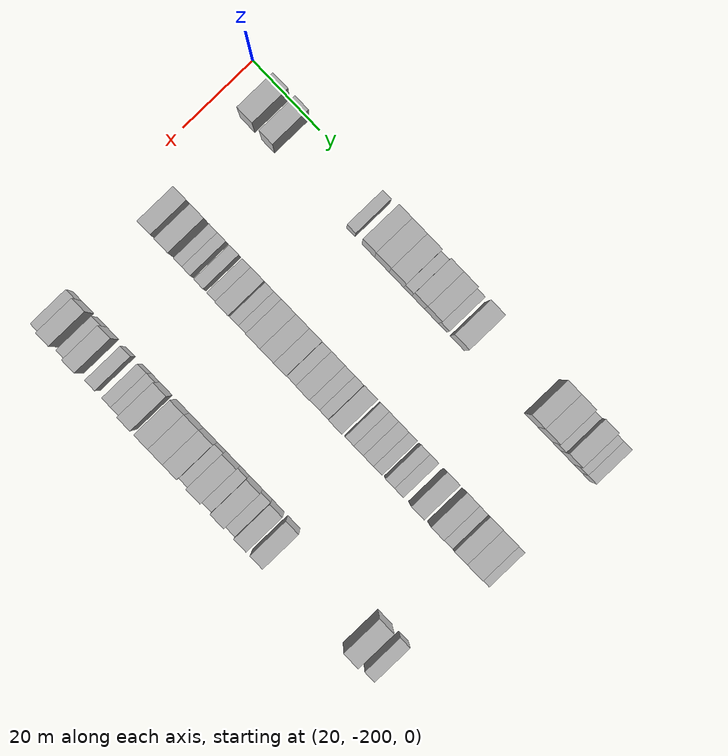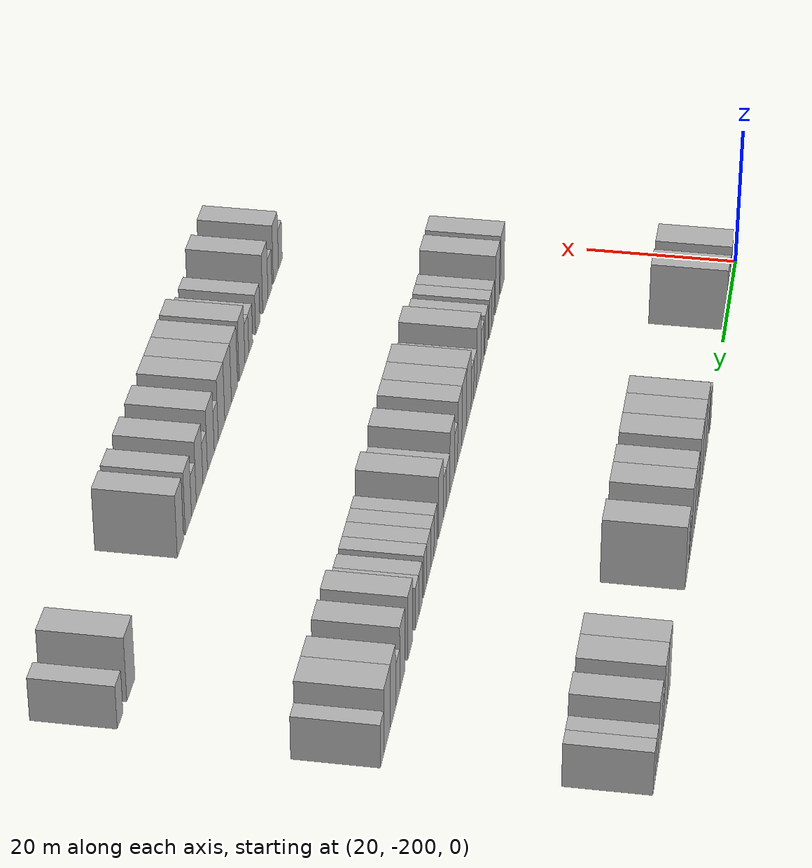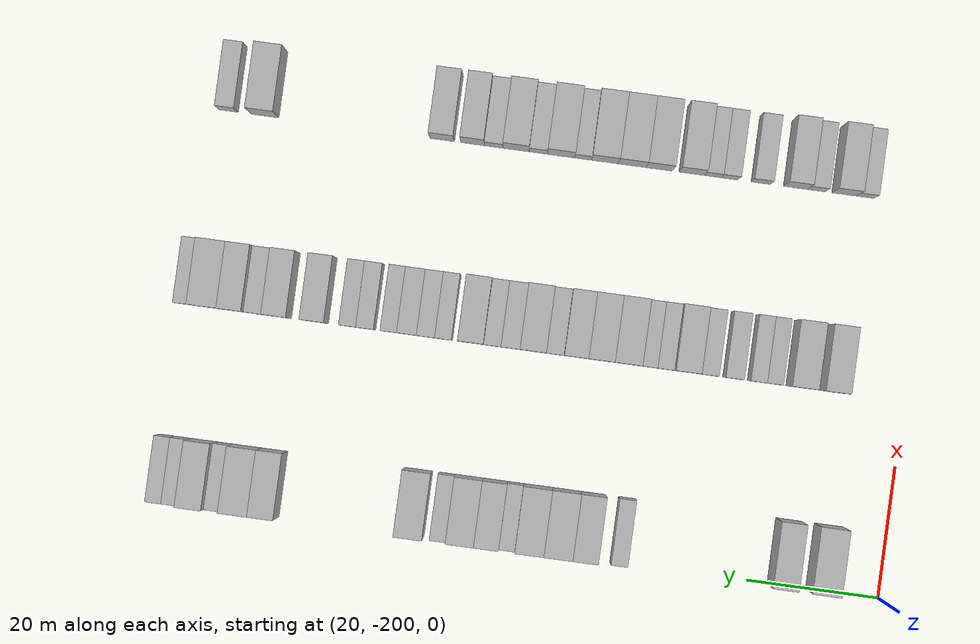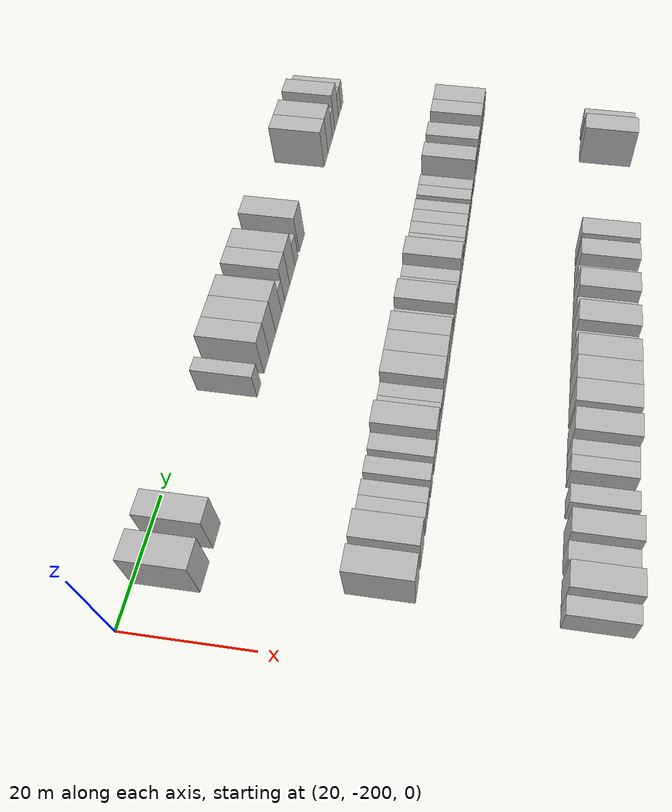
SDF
<sdf version="1.6">
 <world name="default">
  <model name="building_23">
   <static>1</static>
   <pose>25.0000 -191.1368 0 0.000000 0.000000 0.000000</pose>
   <link name="link">
    <pose>0 0 4.50 0 0 0</pose>
    <collision name="collision"><geometry><box><size>10.0000 4.4186 9.0000</size></box></geometry></collision>
    <visual name="visual">
     <cast_shadows>0</cast_shadows>
     <geometry><box><size>10.0000 4.4186 9.0000</size></box></geometry>
     <material>
      <script>
       <uri>model://HANNAS_wall/materials/scripts</uri>
       <uri>model://HANNAS_wall/materials/textures</uri>
       <name>vrc/HANNAS_wall</name>
      </script>
     </material>
    </visual>
   </link>
  </model>
  <model name="building_24">
   <static>1</static>
   <pose>25.0000 -184.9893 0 0.000000 0.000000 0.000000</pose>
   <link name="link">
    <pose>0 0 4.50 0 0 0</pose>
    <collision name="collision"><geometry><box><size>10.0000 3.8763 9.0000</size></box></geometry></collision>
    <visual name="visual">
     <cast_shadows>0</cast_shadows>
     <geometry><box><size>10.0000 3.8763 9.0000</size></box></geometry>
     <material>
      <script>
       <uri>model://HANNAS_wall/materials/scripts</uri>
       <uri>model://HANNAS_wall/materials/textures</uri>
       <name>vrc/HANNAS_wall</name>
      </script>
     </material>
    </visual>
   </link>
  </model>
  <model name="building_25">
   <static>1</static>
   <pose>25.0000 -160.2648 0 0.000000 0.000000 0.000000</pose>
   <link name="link">
    <pose>0 0 3.00 0 0 0</pose>
    <collision name="collision"><geometry><box><size>10.0000 2.5242 6.0000</size></box></geometry></collision>
    <visual name="visual">
     <cast_shadows>0</cast_shadows>
     <geometry><box><size>10.0000 2.5242 6.0000</size></box></geometry>
     <material>
      <script>
       <uri>model://HANNAS_wall/materials/scripts</uri>
       <uri>model://HANNAS_wall/materials/textures</uri>
       <name>vrc/HANNAS_wall</name>
      </script>
     </material>
    </visual>
   </link>
  </model>
  <model name="building_26">
   <static>1</static>
   <pose>25.0000 -155.0980 0 0.000000 0.000000 0.000000</pose>
   <link name="link">
    <pose>0 0 4.50 0 0 0</pose>
    <collision name="collision"><geometry><box><size>10.0000 3.8093 9.0000</size></box></geometry></collision>
    <visual name="visual">
     <cast_shadows>0</cast_shadows>
     <geometry><box><size>10.0000 3.8093 9.0000</size></box></geometry>
     <material>
      <script>
       <uri>model://HANNAS_wall/materials/scripts</uri>
       <uri>model://HANNAS_wall/materials/textures</uri>
       <name>vrc/HANNAS_wall</name>
      </script>
     </material>
    </visual>
   </link>
  </model>
  <model name="building_27">
   <static>1</static>
   <pose>25.0000 -151.0270 0 0.000000 0.000000 0.000000</pose>
   <link name="link">
    <pose>0 0 4.50 0 0 0</pose>
    <collision name="collision"><geometry><box><size>10.0000 4.3329 9.0000</size></box></geometry></collision>
    <visual name="visual">
     <cast_shadows>0</cast_shadows>
     <geometry><box><size>10.0000 4.3329 9.0000</size></box></geometry>
     <material>
      <script>
       <uri>model://HANNAS_wall/materials/scripts</uri>
       <uri>model://HANNAS_wall/materials/textures</uri>
       <name>vrc/HANNAS_wall</name>
      </script>
     </material>
    </visual>
   </link>
  </model>
  <model name="building_28">
   <static>1</static>
   <pose>25.0000 -146.6813 0 0.000000 0.000000 0.000000</pose>
   <link name="link">
    <pose>0 0 4.50 0 0 0</pose>
    <collision name="collision"><geometry><box><size>10.0000 4.3583 9.0000</size></box></geometry></collision>
    <visual name="visual">
     <cast_shadows>0</cast_shadows>
     <geometry><box><size>10.0000 4.3583 9.0000</size></box></geometry>
     <material>
      <script>
       <uri>model://HANNAS_wall/materials/scripts</uri>
       <uri>model://HANNAS_wall/materials/textures</uri>
       <name>vrc/HANNAS_wall</name>
      </script>
     </material>
    </visual>
   </link>
  </model>
  <model name="building_29">
   <static>1</static>
   <pose>25.0000 -143.2896 0 0.000000 0.000000 0.000000</pose>
   <link name="link">
    <pose>0 0 3.00 0 0 0</pose>
    <collision name="collision"><geometry><box><size>10.0000 2.4252 6.0000</size></box></geometry></collision>
    <visual name="visual">
     <cast_shadows>0</cast_shadows>
     <geometry><box><size>10.0000 2.4252 6.0000</size></box></geometry>
     <material>
      <script>
       <uri>model://HANNAS_wall/materials/scripts</uri>
       <uri>model://HANNAS_wall/materials/textures</uri>
       <name>vrc/HANNAS_wall</name>
      </script>
     </material>
    </visual>
   </link>
  </model>
  <model name="building_30">
   <static>1</static>
   <pose>25.0000 -140.2094 0 0.000000 0.000000 0.000000</pose>
   <link name="link">
    <pose>0 0 4.50 0 0 0</pose>
    <collision name="collision"><geometry><box><size>10.0000 3.7352 9.0000</size></box></geometry></collision>
    <visual name="visual">
     <cast_shadows>0</cast_shadows>
     <geometry><box><size>10.0000 3.7352 9.0000</size></box></geometry>
     <material>
      <script>
       <uri>model://HANNAS_wall/materials/scripts</uri>
       <uri>model://HANNAS_wall/materials/textures</uri>
       <name>vrc/HANNAS_wall</name>
      </script>
     </material>
    </visual>
   </link>
  </model>
  <model name="building_31">
   <static>1</static>
   <pose>25.0000 -136.2320 0 0.000000 0.000000 0.000000</pose>
   <link name="link">
    <pose>0 0 4.50 0 0 0</pose>
    <collision name="collision"><geometry><box><size>10.0000 4.2196 9.0000</size></box></geometry></collision>
    <visual name="visual">
     <cast_shadows>0</cast_shadows>
     <geometry><box><size>10.0000 4.2196 9.0000</size></box></geometry>
     <material>
      <script>
       <uri>model://HANNAS_wall/materials/scripts</uri>
       <uri>model://HANNAS_wall/materials/textures</uri>
       <name>vrc/HANNAS_wall</name>
      </script>
     </material>
    </visual>
   </link>
  </model>
  <model name="building_32">
   <static>1</static>
   <pose>25.0000 -132.8708 0 0.000000 0.000000 0.000000</pose>
   <link name="link">
    <pose>0 0 3.00 0 0 0</pose>
    <collision name="collision"><geometry><box><size>10.0000 2.5028 6.0000</size></box></geometry></collision>
    <visual name="visual">
     <cast_shadows>0</cast_shadows>
     <geometry><box><size>10.0000 2.5028 6.0000</size></box></geometry>
     <material>
      <script>
       <uri>model://HANNAS_wall/materials/scripts</uri>
       <uri>model://HANNAS_wall/materials/textures</uri>
       <name>vrc/HANNAS_wall</name>
      </script>
     </material>
    </visual>
   </link>
  </model>
  <model name="building_33">
   <static>1</static>
   <pose>25.0000 -128.4761 0 0.000000 0.000000 0.000000</pose>
   <link name="link">
    <pose>0 0 4.50 0 0 0</pose>
    <collision name="collision"><geometry><box><size>10.0000 4.2866 9.0000</size></box></geometry></collision>
    <visual name="visual">
     <cast_shadows>0</cast_shadows>
     <geometry><box><size>10.0000 4.2866 9.0000</size></box></geometry>
     <material>
      <script>
       <uri>model://HANNAS_wall/materials/scripts</uri>
       <uri>model://HANNAS_wall/materials/textures</uri>
       <name>vrc/HANNAS_wall</name>
      </script>
     </material>
    </visual>
   </link>
  </model>
  <model name="building_34">
   <static>1</static>
   <pose>25.0000 -106.4700 0 0.000000 0.000000 0.000000</pose>
   <link name="link">
    <pose>0 0 4.50 0 0 0</pose>
    <collision name="collision"><geometry><box><size>10.0000 3.9086 9.0000</size></box></geometry></collision>
    <visual name="visual">
     <cast_shadows>0</cast_shadows>
     <geometry><box><size>10.0000 3.9086 9.0000</size></box></geometry>
     <material>
      <script>
       <uri>model://HANNAS_wall/materials/scripts</uri>
       <uri>model://HANNAS_wall/materials/textures</uri>
       <name>vrc/HANNAS_wall</name>
      </script>
     </material>
    </visual>
   </link>
  </model>
  <model name="building_35">
   <static>1</static>
   <pose>25.0000 -102.3288 0 0.000000 0.000000 0.000000</pose>
   <link name="link">
    <pose>0 0 4.50 0 0 0</pose>
    <collision name="collision"><geometry><box><size>10.0000 4.3737 9.0000</size></box></geometry></collision>
    <visual name="visual">
     <cast_shadows>0</cast_shadows>
     <geometry><box><size>10.0000 4.3737 9.0000</size></box></geometry>
     <material>
      <script>
       <uri>model://HANNAS_wall/materials/scripts</uri>
       <uri>model://HANNAS_wall/materials/textures</uri>
       <name>vrc/HANNAS_wall</name>
      </script>
     </material>
    </visual>
   </link>
  </model>
  <model name="building_36">
   <static>1</static>
   <pose>25.0000 -98.9074 0 0.000000 0.000000 0.000000</pose>
   <link name="link">
    <pose>0 0 3.00 0 0 0</pose>
    <collision name="collision"><geometry><box><size>10.0000 2.4693 6.0000</size></box></geometry></collision>
    <visual name="visual">
     <cast_shadows>0</cast_shadows>
     <geometry><box><size>10.0000 2.4693 6.0000</size></box></geometry>
     <material>
      <script>
       <uri>model://HANNAS_wall/materials/scripts</uri>
       <uri>model://HANNAS_wall/materials/textures</uri>
       <name>vrc/HANNAS_wall</name>
      </script>
     </material>
    </visual>
   </link>
  </model>
  <model name="building_37">
   <static>1</static>
   <pose>25.0000 -95.6918 0 0.000000 0.000000 0.000000</pose>
   <link name="link">
    <pose>0 0 4.50 0 0 0</pose>
    <collision name="collision"><geometry><box><size>10.0000 3.9618 9.0000</size></box></geometry></collision>
    <visual name="visual">
     <cast_shadows>0</cast_shadows>
     <geometry><box><size>10.0000 3.9618 9.0000</size></box></geometry>
     <material>
      <script>
       <uri>model://HANNAS_wall/materials/scripts</uri>
       <uri>model://HANNAS_wall/materials/textures</uri>
       <name>vrc/HANNAS_wall</name>
      </script>
     </material>
    </visual>
   </link>
  </model>
  <model name="building_38">
   <static>1</static>
   <pose>25.0000 -92.4772 0 0.000000 0.000000 0.000000</pose>
   <link name="link">
    <pose>0 0 3.00 0 0 0</pose>
    <collision name="collision"><geometry><box><size>10.0000 2.4674 6.0000</size></box></geometry></collision>
    <visual name="visual">
     <cast_shadows>0</cast_shadows>
     <geometry><box><size>10.0000 2.4674 6.0000</size></box></geometry>
     <material>
      <script>
       <uri>model://HANNAS_wall/materials/scripts</uri>
       <uri>model://HANNAS_wall/materials/textures</uri>
       <name>vrc/HANNAS_wall</name>
      </script>
     </material>
    </visual>
   </link>
  </model>
  <model name="building_39">
   <static>1</static>
   <pose>25.0000 -90.0292 0 0.000000 0.000000 0.000000</pose>
   <link name="link">
    <pose>0 0 3.00 0 0 0</pose>
    <collision name="collision"><geometry><box><size>10.0000 2.4285 6.0000</size></box></geometry></collision>
    <visual name="visual">
     <cast_shadows>0</cast_shadows>
     <geometry><box><size>10.0000 2.4285 6.0000</size></box></geometry>
     <material>
      <script>
       <uri>model://HANNAS_wall/materials/scripts</uri>
       <uri>model://HANNAS_wall/materials/textures</uri>
       <name>vrc/HANNAS_wall</name>
      </script>
     </material>
    </visual>
   </link>
  </model>
  <model name="building_156">
   <static>1</static>
   <pose>55.0000 -188.8538 0 0.000000 0.000000 0.000000</pose>
   <link name="link">
    <pose>0 0 4.50 0 0 0</pose>
    <collision name="collision"><geometry><box><size>10.0000 3.8310 9.0000</size></box></geometry></collision>
    <visual name="visual">
     <cast_shadows>0</cast_shadows>
     <geometry><box><size>10.0000 3.8310 9.0000</size></box></geometry>
     <material>
      <script>
       <uri>model://HANNAS_wall/materials/scripts</uri>
       <uri>model://HANNAS_wall/materials/textures</uri>
       <name>vrc/HANNAS_wall</name>
      </script>
     </material>
    </visual>
   </link>
  </model>
  <model name="building_157">
   <static>1</static>
   <pose>55.0000 -183.9315 0 0.000000 0.000000 0.000000</pose>
   <link name="link">
    <pose>0 0 4.50 0 0 0</pose>
    <collision name="collision"><geometry><box><size>10.0000 4.0136 9.0000</size></box></geometry></collision>
    <visual name="visual">
     <cast_shadows>0</cast_shadows>
     <geometry><box><size>10.0000 4.0136 9.0000</size></box></geometry>
     <material>
      <script>
       <uri>model://HANNAS_wall/materials/scripts</uri>
       <uri>model://HANNAS_wall/materials/textures</uri>
       <name>vrc/HANNAS_wall</name>
      </script>
     </material>
    </visual>
   </link>
  </model>
  <model name="building_158">
   <static>1</static>
   <pose>55.0000 -179.7101 0 0.000000 0.000000 0.000000</pose>
   <link name="link">
    <pose>0 0 3.00 0 0 0</pose>
    <collision name="collision"><geometry><box><size>10.0000 2.4291 6.0000</size></box></geometry></collision>
    <visual name="visual">
     <cast_shadows>0</cast_shadows>
     <geometry><box><size>10.0000 2.4291 6.0000</size></box></geometry>
     <material>
      <script>
       <uri>model://HANNAS_wall/materials/scripts</uri>
       <uri>model://HANNAS_wall/materials/textures</uri>
       <name>vrc/HANNAS_wall</name>
      </script>
     </material>
    </visual>
   </link>
  </model>
  <model name="building_159">
   <static>1</static>
   <pose>55.0000 -177.2557 0 0.000000 0.000000 0.000000</pose>
   <link name="link">
    <pose>0 0 3.00 0 0 0</pose>
    <collision name="collision"><geometry><box><size>10.0000 2.4797 6.0000</size></box></geometry></collision>
    <visual name="visual">
     <cast_shadows>0</cast_shadows>
     <geometry><box><size>10.0000 2.4797 6.0000</size></box></geometry>
     <material>
      <script>
       <uri>model://HANNAS_wall/materials/scripts</uri>
       <uri>model://HANNAS_wall/materials/textures</uri>
       <name>vrc/HANNAS_wall</name>
      </script>
     </material>
    </visual>
   </link>
  </model>
  <model name="building_160">
   <static>1</static>
   <pose>55.0000 -173.6331 0 0.000000 0.000000 0.000000</pose>
   <link name="link">
    <pose>0 0 3.00 0 0 0</pose>
    <collision name="collision"><geometry><box><size>10.0000 2.7655 6.0000</size></box></geometry></collision>
    <visual name="visual">
     <cast_shadows>0</cast_shadows>
     <geometry><box><size>10.0000 2.7655 6.0000</size></box></geometry>
     <material>
      <script>
       <uri>model://HANNAS_wall/materials/scripts</uri>
       <uri>model://HANNAS_wall/materials/textures</uri>
       <name>vrc/HANNAS_wall</name>
      </script>
     </material>
    </visual>
   </link>
  </model>
  <model name="building_161">
   <static>1</static>
   <pose>55.0000 -169.8337 0 0.000000 0.000000 0.000000</pose>
   <link name="link">
    <pose>0 0 3.00 0 0 0</pose>
    <collision name="collision"><geometry><box><size>10.0000 2.8332 6.0000</size></box></geometry></collision>
    <visual name="visual">
     <cast_shadows>0</cast_shadows>
     <geometry><box><size>10.0000 2.8332 6.0000</size></box></geometry>
     <material>
      <script>
       <uri>model://HANNAS_wall/materials/scripts</uri>
       <uri>model://HANNAS_wall/materials/textures</uri>
       <name>vrc/HANNAS_wall</name>
      </script>
     </material>
    </visual>
   </link>
  </model>
  <model name="building_162">
   <static>1</static>
   <pose>55.0000 -166.4887 0 0.000000 0.000000 0.000000</pose>
   <link name="link">
    <pose>0 0 4.50 0 0 0</pose>
    <collision name="collision"><geometry><box><size>10.0000 3.8568 9.0000</size></box></geometry></collision>
    <visual name="visual">
     <cast_shadows>0</cast_shadows>
     <geometry><box><size>10.0000 3.8568 9.0000</size></box></geometry>
     <material>
      <script>
       <uri>model://HANNAS_wall/materials/scripts</uri>
       <uri>model://HANNAS_wall/materials/textures</uri>
       <name>vrc/HANNAS_wall</name>
      </script>
     </material>
    </visual>
   </link>
  </model>
  <model name="building_163">
   <static>1</static>
   <pose>55.0000 -163.2809 0 0.000000 0.000000 0.000000</pose>
   <link name="link">
    <pose>0 0 3.00 0 0 0</pose>
    <collision name="collision"><geometry><box><size>10.0000 2.5588 6.0000</size></box></geometry></collision>
    <visual name="visual">
     <cast_shadows>0</cast_shadows>
     <geometry><box><size>10.0000 2.5588 6.0000</size></box></geometry>
     <material>
      <script>
       <uri>model://HANNAS_wall/materials/scripts</uri>
       <uri>model://HANNAS_wall/materials/textures</uri>
       <name>vrc/HANNAS_wall</name>
      </script>
     </material>
    </visual>
   </link>
  </model>
  <model name="building_164">
   <static>1</static>
   <pose>55.0000 -160.7973 0 0.000000 0.000000 0.000000</pose>
   <link name="link">
    <pose>0 0 3.00 0 0 0</pose>
    <collision name="collision"><geometry><box><size>10.0000 2.4084 6.0000</size></box></geometry></collision>
    <visual name="visual">
     <cast_shadows>0</cast_shadows>
     <geometry><box><size>10.0000 2.4084 6.0000</size></box></geometry>
     <material>
      <script>
       <uri>model://HANNAS_wall/materials/scripts</uri>
       <uri>model://HANNAS_wall/materials/textures</uri>
       <name>vrc/HANNAS_wall</name>
      </script>
     </material>
    </visual>
   </link>
  </model>
  <model name="building_165">
   <static>1</static>
   <pose>55.0000 -157.5292 0 0.000000 0.000000 0.000000</pose>
   <link name="link">
    <pose>0 0 4.50 0 0 0</pose>
    <collision name="collision"><geometry><box><size>10.0000 4.1278 9.0000</size></box></geometry></collision>
    <visual name="visual">
     <cast_shadows>0</cast_shadows>
     <geometry><box><size>10.0000 4.1278 9.0000</size></box></geometry>
     <material>
      <script>
       <uri>model://HANNAS_wall/materials/scripts</uri>
       <uri>model://HANNAS_wall/materials/textures</uri>
       <name>vrc/HANNAS_wall</name>
      </script>
     </material>
    </visual>
   </link>
  </model>
  <model name="building_166">
   <static>1</static>
   <pose>55.0000 -153.4944 0 0.000000 0.000000 0.000000</pose>
   <link name="link">
    <pose>0 0 4.50 0 0 0</pose>
    <collision name="collision"><geometry><box><size>10.0000 3.9416 9.0000</size></box></geometry></collision>
    <visual name="visual">
     <cast_shadows>0</cast_shadows>
     <geometry><box><size>10.0000 3.9416 9.0000</size></box></geometry>
     <material>
      <script>
       <uri>model://HANNAS_wall/materials/scripts</uri>
       <uri>model://HANNAS_wall/materials/textures</uri>
       <name>vrc/HANNAS_wall</name>
      </script>
     </material>
    </visual>
   </link>
  </model>
  <model name="building_167">
   <static>1</static>
   <pose>55.0000 -149.7091 0 0.000000 0.000000 0.000000</pose>
   <link name="link">
    <pose>0 0 4.50 0 0 0</pose>
    <collision name="collision"><geometry><box><size>10.0000 3.6290 9.0000</size></box></geometry></collision>
    <visual name="visual">
     <cast_shadows>0</cast_shadows>
     <geometry><box><size>10.0000 3.6290 9.0000</size></box></geometry>
     <material>
      <script>
       <uri>model://HANNAS_wall/materials/scripts</uri>
       <uri>model://HANNAS_wall/materials/textures</uri>
       <name>vrc/HANNAS_wall</name>
      </script>
     </material>
    </visual>
   </link>
  </model>
  <model name="building_168">
   <static>1</static>
   <pose>55.0000 -146.5440 0 0.000000 0.000000 0.000000</pose>
   <link name="link">
    <pose>0 0 3.00 0 0 0</pose>
    <collision name="collision"><geometry><box><size>10.0000 2.7011 6.0000</size></box></geometry></collision>
    <visual name="visual">
     <cast_shadows>0</cast_shadows>
     <geometry><box><size>10.0000 2.7011 6.0000</size></box></geometry>
     <material>
      <script>
       <uri>model://HANNAS_wall/materials/scripts</uri>
       <uri>model://HANNAS_wall/materials/textures</uri>
       <name>vrc/HANNAS_wall</name>
      </script>
     </material>
    </visual>
   </link>
  </model>
  <model name="building_169">
   <static>1</static>
   <pose>55.0000 -143.2137 0 0.000000 0.000000 0.000000</pose>
   <link name="link">
    <pose>0 0 4.50 0 0 0</pose>
    <collision name="collision"><geometry><box><size>10.0000 3.9596 9.0000</size></box></geometry></collision>
    <visual name="visual">
     <cast_shadows>0</cast_shadows>
     <geometry><box><size>10.0000 3.9596 9.0000</size></box></geometry>
     <material>
      <script>
       <uri>model://HANNAS_wall/materials/scripts</uri>
       <uri>model://HANNAS_wall/materials/textures</uri>
       <name>vrc/HANNAS_wall</name>
      </script>
     </material>
    </visual>
   </link>
  </model>
  <model name="building_170">
   <static>1</static>
   <pose>55.0000 -139.7906 0 0.000000 0.000000 0.000000</pose>
   <link name="link">
    <pose>0 0 3.00 0 0 0</pose>
    <collision name="collision"><geometry><box><size>10.0000 2.8866 6.0000</size></box></geometry></collision>
    <visual name="visual">
     <cast_shadows>0</cast_shadows>
     <geometry><box><size>10.0000 2.8866 6.0000</size></box></geometry>
     <material>
      <script>
       <uri>model://HANNAS_wall/materials/scripts</uri>
       <uri>model://HANNAS_wall/materials/textures</uri>
       <name>vrc/HANNAS_wall</name>
      </script>
     </material>
    </visual>
   </link>
  </model>
  <model name="building_171">
   <static>1</static>
   <pose>55.0000 -137.0431 0 0.000000 0.000000 0.000000</pose>
   <link name="link">
    <pose>0 0 3.00 0 0 0</pose>
    <collision name="collision"><geometry><box><size>10.0000 2.6082 6.0000</size></box></geometry></collision>
    <visual name="visual">
     <cast_shadows>0</cast_shadows>
     <geometry><box><size>10.0000 2.6082 6.0000</size></box></geometry>
     <material>
      <script>
       <uri>model://HANNAS_wall/materials/scripts</uri>
       <uri>model://HANNAS_wall/materials/textures</uri>
       <name>vrc/HANNAS_wall</name>
      </script>
     </material>
    </visual>
   </link>
  </model>
  <model name="building_172">
   <static>1</static>
   <pose>55.0000 -133.8096 0 0.000000 0.000000 0.000000</pose>
   <link name="link">
    <pose>0 0 4.50 0 0 0</pose>
    <collision name="collision"><geometry><box><size>10.0000 3.8589 9.0000</size></box></geometry></collision>
    <visual name="visual">
     <cast_shadows>0</cast_shadows>
     <geometry><box><size>10.0000 3.8589 9.0000</size></box></geometry>
     <material>
      <script>
       <uri>model://HANNAS_wall/materials/scripts</uri>
       <uri>model://HANNAS_wall/materials/textures</uri>
       <name>vrc/HANNAS_wall</name>
      </script>
     </material>
    </visual>
   </link>
  </model>
  <model name="building_173">
   <static>1</static>
   <pose>55.0000 -129.6074 0 0.000000 0.000000 0.000000</pose>
   <link name="link">
    <pose>0 0 3.00 0 0 0</pose>
    <collision name="collision"><geometry><box><size>10.0000 2.5455 6.0000</size></box></geometry></collision>
    <visual name="visual">
     <cast_shadows>0</cast_shadows>
     <geometry><box><size>10.0000 2.5455 6.0000</size></box></geometry>
     <material>
      <script>
       <uri>model://HANNAS_wall/materials/scripts</uri>
       <uri>model://HANNAS_wall/materials/textures</uri>
       <name>vrc/HANNAS_wall</name>
      </script>
     </material>
    </visual>
   </link>
  </model>
  <model name="building_174">
   <static>1</static>
   <pose>55.0000 -126.9661 0 0.000000 0.000000 0.000000</pose>
   <link name="link">
    <pose>0 0 3.00 0 0 0</pose>
    <collision name="collision"><geometry><box><size>10.0000 2.7371 6.0000</size></box></geometry></collision>
    <visual name="visual">
     <cast_shadows>0</cast_shadows>
     <geometry><box><size>10.0000 2.7371 6.0000</size></box></geometry>
     <material>
      <script>
       <uri>model://HANNAS_wall/materials/scripts</uri>
       <uri>model://HANNAS_wall/materials/textures</uri>
       <name>vrc/HANNAS_wall</name>
      </script>
     </material>
    </visual>
   </link>
  </model>
  <model name="building_175">
   <static>1</static>
   <pose>55.0000 -124.1077 0 0.000000 0.000000 0.000000</pose>
   <link name="link">
    <pose>0 0 3.00 0 0 0</pose>
    <collision name="collision"><geometry><box><size>10.0000 2.9798 6.0000</size></box></geometry></collision>
    <visual name="visual">
     <cast_shadows>0</cast_shadows>
     <geometry><box><size>10.0000 2.9798 6.0000</size></box></geometry>
     <material>
      <script>
       <uri>model://HANNAS_wall/materials/scripts</uri>
       <uri>model://HANNAS_wall/materials/textures</uri>
       <name>vrc/HANNAS_wall</name>
      </script>
     </material>
    </visual>
   </link>
  </model>
  <model name="building_176">
   <static>1</static>
   <pose>55.0000 -121.3742 0 0.000000 0.000000 0.000000</pose>
   <link name="link">
    <pose>0 0 3.00 0 0 0</pose>
    <collision name="collision"><geometry><box><size>10.0000 2.4873 6.0000</size></box></geometry></collision>
    <visual name="visual">
     <cast_shadows>0</cast_shadows>
     <geometry><box><size>10.0000 2.4873 6.0000</size></box></geometry>
     <material>
      <script>
       <uri>model://HANNAS_wall/materials/scripts</uri>
       <uri>model://HANNAS_wall/materials/textures</uri>
       <name>vrc/HANNAS_wall</name>
      </script>
     </material>
    </visual>
   </link>
  </model>
  <model name="building_177">
   <static>1</static>
   <pose>55.0000 -117.7868 0 0.000000 0.000000 0.000000</pose>
   <link name="link">
    <pose>0 0 3.00 0 0 0</pose>
    <collision name="collision"><geometry><box><size>10.0000 2.6875 6.0000</size></box></geometry></collision>
    <visual name="visual">
     <cast_shadows>0</cast_shadows>
     <geometry><box><size>10.0000 2.6875 6.0000</size></box></geometry>
     <material>
      <script>
       <uri>model://HANNAS_wall/materials/scripts</uri>
       <uri>model://HANNAS_wall/materials/textures</uri>
       <name>vrc/HANNAS_wall</name>
      </script>
     </material>
    </visual>
   </link>
  </model>
  <model name="building_178">
   <static>1</static>
   <pose>55.0000 -115.1599 0 0.000000 0.000000 0.000000</pose>
   <link name="link">
    <pose>0 0 3.00 0 0 0</pose>
    <collision name="collision"><geometry><box><size>10.0000 2.5662 6.0000</size></box></geometry></collision>
    <visual name="visual">
     <cast_shadows>0</cast_shadows>
     <geometry><box><size>10.0000 2.5662 6.0000</size></box></geometry>
     <material>
      <script>
       <uri>model://HANNAS_wall/materials/scripts</uri>
       <uri>model://HANNAS_wall/materials/textures</uri>
       <name>vrc/HANNAS_wall</name>
      </script>
     </material>
    </visual>
   </link>
  </model>
  <model name="building_179">
   <static>1</static>
   <pose>55.0000 -110.0407 0 0.000000 0.000000 0.000000</pose>
   <link name="link">
    <pose>0 0 4.50 0 0 0</pose>
    <collision name="collision"><geometry><box><size>10.0000 3.6724 9.0000</size></box></geometry></collision>
    <visual name="visual">
     <cast_shadows>0</cast_shadows>
     <geometry><box><size>10.0000 3.6724 9.0000</size></box></geometry>
     <material>
      <script>
       <uri>model://HANNAS_wall/materials/scripts</uri>
       <uri>model://HANNAS_wall/materials/textures</uri>
       <name>vrc/HANNAS_wall</name>
      </script>
     </material>
    </visual>
   </link>
  </model>
  <model name="building_180">
   <static>1</static>
   <pose>55.0000 -104.3489 0 0.000000 0.000000 0.000000</pose>
   <link name="link">
    <pose>0 0 4.50 0 0 0</pose>
    <collision name="collision"><geometry><box><size>10.0000 3.7110 9.0000</size></box></geometry></collision>
    <visual name="visual">
     <cast_shadows>0</cast_shadows>
     <geometry><box><size>10.0000 3.7110 9.0000</size></box></geometry>
     <material>
      <script>
       <uri>model://HANNAS_wall/materials/scripts</uri>
       <uri>model://HANNAS_wall/materials/textures</uri>
       <name>vrc/HANNAS_wall</name>
      </script>
     </material>
    </visual>
   </link>
  </model>
  <model name="building_181">
   <static>1</static>
   <pose>55.0000 -101.0014 0 0.000000 0.000000 0.000000</pose>
   <link name="link">
    <pose>0 0 3.00 0 0 0</pose>
    <collision name="collision"><geometry><box><size>10.0000 2.9841 6.0000</size></box></geometry></collision>
    <visual name="visual">
     <cast_shadows>0</cast_shadows>
     <geometry><box><size>10.0000 2.9841 6.0000</size></box></geometry>
     <material>
      <script>
       <uri>model://HANNAS_wall/materials/scripts</uri>
       <uri>model://HANNAS_wall/materials/textures</uri>
       <name>vrc/HANNAS_wall</name>
      </script>
     </material>
    </visual>
   </link>
  </model>
  <model name="building_182">
   <static>1</static>
   <pose>55.0000 -97.6556 0 0.000000 0.000000 0.000000</pose>
   <link name="link">
    <pose>0 0 4.50 0 0 0</pose>
    <collision name="collision"><geometry><box><size>10.0000 3.7073 9.0000</size></box></geometry></collision>
    <visual name="visual">
     <cast_shadows>0</cast_shadows>
     <geometry><box><size>10.0000 3.7073 9.0000</size></box></geometry>
     <material>
      <script>
       <uri>model://HANNAS_wall/materials/scripts</uri>
       <uri>model://HANNAS_wall/materials/textures</uri>
       <name>vrc/HANNAS_wall</name>
      </script>
     </material>
    </visual>
   </link>
  </model>
  <model name="building_183">
   <static>1</static>
   <pose>55.0000 -93.5635 0 0.000000 0.000000 0.000000</pose>
   <link name="link">
    <pose>0 0 4.50 0 0 0</pose>
    <collision name="collision"><geometry><box><size>10.0000 4.4770 9.0000</size></box></geometry></collision>
    <visual name="visual">
     <cast_shadows>0</cast_shadows>
     <geometry><box><size>10.0000 4.4770 9.0000</size></box></geometry>
     <material>
      <script>
       <uri>model://HANNAS_wall/materials/scripts</uri>
       <uri>model://HANNAS_wall/materials/textures</uri>
       <name>vrc/HANNAS_wall</name>
      </script>
     </material>
    </visual>
   </link>
  </model>
  <model name="building_184">
   <static>1</static>
   <pose>55.0000 -90.0918 0 0.000000 0.000000 0.000000</pose>
   <link name="link">
    <pose>0 0 3.00 0 0 0</pose>
    <collision name="collision"><geometry><box><size>10.0000 2.4663 6.0000</size></box></geometry></collision>
    <visual name="visual">
     <cast_shadows>0</cast_shadows>
     <geometry><box><size>10.0000 2.4663 6.0000</size></box></geometry>
     <material>
      <script>
       <uri>model://HANNAS_wall/materials/scripts</uri>
       <uri>model://HANNAS_wall/materials/textures</uri>
       <name>vrc/HANNAS_wall</name>
      </script>
     </material>
    </visual>
   </link>
  </model>
  <model name="building_295">
   <static>1</static>
   <pose>85.0000 -190.0573 0 0.000000 0.000000 0.000000</pose>
   <link name="link">
    <pose>0 0 3.00 0 0 0</pose>
    <collision name="collision"><geometry><box><size>10.0000 2.7038 6.0000</size></box></geometry></collision>
    <visual name="visual">
     <cast_shadows>0</cast_shadows>
     <geometry><box><size>10.0000 2.7038 6.0000</size></box></geometry>
     <material>
      <script>
       <uri>model://HANNAS_wall/materials/scripts</uri>
       <uri>model://HANNAS_wall/materials/textures</uri>
       <name>vrc/HANNAS_wall</name>
      </script>
     </material>
    </visual>
   </link>
  </model>
  <model name="building_296">
   <static>1</static>
   <pose>85.0000 -186.8406 0 0.000000 0.000000 0.000000</pose>
   <link name="link">
    <pose>0 0 4.50 0 0 0</pose>
    <collision name="collision"><geometry><box><size>10.0000 3.7296 9.0000</size></box></geometry></collision>
    <visual name="visual">
     <cast_shadows>0</cast_shadows>
     <geometry><box><size>10.0000 3.7296 9.0000</size></box></geometry>
     <material>
      <script>
       <uri>model://HANNAS_wall/materials/scripts</uri>
       <uri>model://HANNAS_wall/materials/textures</uri>
       <name>vrc/HANNAS_wall</name>
      </script>
     </material>
    </visual>
   </link>
  </model>
  <model name="building_297">
   <static>1</static>
   <pose>85.0000 -182.5850 0 0.000000 0.000000 0.000000</pose>
   <link name="link">
    <pose>0 0 3.00 0 0 0</pose>
    <collision name="collision"><geometry><box><size>10.0000 2.7816 6.0000</size></box></geometry></collision>
    <visual name="visual">
     <cast_shadows>0</cast_shadows>
     <geometry><box><size>10.0000 2.7816 6.0000</size></box></geometry>
     <material>
      <script>
       <uri>model://HANNAS_wall/materials/scripts</uri>
       <uri>model://HANNAS_wall/materials/textures</uri>
       <name>vrc/HANNAS_wall</name>
      </script>
     </material>
    </visual>
   </link>
  </model>
  <model name="building_298">
   <static>1</static>
   <pose>85.0000 -179.3754 0 0.000000 0.000000 0.000000</pose>
   <link name="link">
    <pose>0 0 4.50 0 0 0</pose>
    <collision name="collision"><geometry><box><size>10.0000 3.6376 9.0000</size></box></geometry></collision>
    <visual name="visual">
     <cast_shadows>0</cast_shadows>
     <geometry><box><size>10.0000 3.6376 9.0000</size></box></geometry>
     <material>
      <script>
       <uri>model://HANNAS_wall/materials/scripts</uri>
       <uri>model://HANNAS_wall/materials/textures</uri>
       <name>vrc/HANNAS_wall</name>
      </script>
     </material>
    </visual>
   </link>
  </model>
  <model name="building_299">
   <static>1</static>
   <pose>85.0000 -174.0804 0 0.000000 0.000000 0.000000</pose>
   <link name="link">
    <pose>0 0 3.00 0 0 0</pose>
    <collision name="collision"><geometry><box><size>10.0000 2.9524 6.0000</size></box></geometry></collision>
    <visual name="visual">
     <cast_shadows>0</cast_shadows>
     <geometry><box><size>10.0000 2.9524 6.0000</size></box></geometry>
     <material>
      <script>
       <uri>model://HANNAS_wall/materials/scripts</uri>
       <uri>model://HANNAS_wall/materials/textures</uri>
       <name>vrc/HANNAS_wall</name>
      </script>
     </material>
    </visual>
   </link>
  </model>
  <model name="building_300">
   <static>1</static>
   <pose>85.0000 -169.2849 0 0.000000 0.000000 0.000000</pose>
   <link name="link">
    <pose>0 0 3.00 0 0 0</pose>
    <collision name="collision"><geometry><box><size>10.0000 2.6386 6.0000</size></box></geometry></collision>
    <visual name="visual">
     <cast_shadows>0</cast_shadows>
     <geometry><box><size>10.0000 2.6386 6.0000</size></box></geometry>
     <material>
      <script>
       <uri>model://HANNAS_wall/materials/scripts</uri>
       <uri>model://HANNAS_wall/materials/textures</uri>
       <name>vrc/HANNAS_wall</name>
      </script>
     </material>
    </visual>
   </link>
  </model>
  <model name="building_301">
   <static>1</static>
   <pose>85.0000 -166.6782 0 0.000000 0.000000 0.000000</pose>
   <link name="link">
    <pose>0 0 3.00 0 0 0</pose>
    <collision name="collision"><geometry><box><size>10.0000 2.5748 6.0000</size></box></geometry></collision>
    <visual name="visual">
     <cast_shadows>0</cast_shadows>
     <geometry><box><size>10.0000 2.5748 6.0000</size></box></geometry>
     <material>
      <script>
       <uri>model://HANNAS_wall/materials/scripts</uri>
       <uri>model://HANNAS_wall/materials/textures</uri>
       <name>vrc/HANNAS_wall</name>
      </script>
     </material>
    </visual>
   </link>
  </model>
  <model name="building_302">
   <static>1</static>
   <pose>85.0000 -163.4593 0 0.000000 0.000000 0.000000</pose>
   <link name="link">
    <pose>0 0 4.50 0 0 0</pose>
    <collision name="collision"><geometry><box><size>10.0000 3.8628 9.0000</size></box></geometry></collision>
    <visual name="visual">
     <cast_shadows>0</cast_shadows>
     <geometry><box><size>10.0000 3.8628 9.0000</size></box></geometry>
     <material>
      <script>
       <uri>model://HANNAS_wall/materials/scripts</uri>
       <uri>model://HANNAS_wall/materials/textures</uri>
       <name>vrc/HANNAS_wall</name>
      </script>
     </material>
    </visual>
   </link>
  </model>
  <model name="building_303">
   <static>1</static>
   <pose>85.0000 -158.5019 0 0.000000 0.000000 0.000000</pose>
   <link name="link">
    <pose>0 0 4.50 0 0 0</pose>
    <collision name="collision"><geometry><box><size>10.0000 4.0520 9.0000</size></box></geometry></collision>
    <visual name="visual">
     <cast_shadows>0</cast_shadows>
     <geometry><box><size>10.0000 4.0520 9.0000</size></box></geometry>
     <material>
      <script>
       <uri>model://HANNAS_wall/materials/scripts</uri>
       <uri>model://HANNAS_wall/materials/textures</uri>
       <name>vrc/HANNAS_wall</name>
      </script>
     </material>
    </visual>
   </link>
  </model>
  <model name="building_304">
   <static>1</static>
   <pose>85.0000 -154.3521 0 0.000000 0.000000 0.000000</pose>
   <link name="link">
    <pose>0 0 4.50 0 0 0</pose>
    <collision name="collision"><geometry><box><size>10.0000 4.2477 9.0000</size></box></geometry></collision>
    <visual name="visual">
     <cast_shadows>0</cast_shadows>
     <geometry><box><size>10.0000 4.2477 9.0000</size></box></geometry>
     <material>
      <script>
       <uri>model://HANNAS_wall/materials/scripts</uri>
       <uri>model://HANNAS_wall/materials/textures</uri>
       <name>vrc/HANNAS_wall</name>
      </script>
     </material>
    </visual>
   </link>
  </model>
  <model name="building_305">
   <static>1</static>
   <pose>85.0000 -150.1660 0 0.000000 0.000000 0.000000</pose>
   <link name="link">
    <pose>0 0 4.50 0 0 0</pose>
    <collision name="collision"><geometry><box><size>10.0000 4.1244 9.0000</size></box></geometry></collision>
    <visual name="visual">
     <cast_shadows>0</cast_shadows>
     <geometry><box><size>10.0000 4.1244 9.0000</size></box></geometry>
     <material>
      <script>
       <uri>model://HANNAS_wall/materials/scripts</uri>
       <uri>model://HANNAS_wall/materials/textures</uri>
       <name>vrc/HANNAS_wall</name>
      </script>
     </material>
    </visual>
   </link>
  </model>
  <model name="building_306">
   <static>1</static>
   <pose>85.0000 -146.8241 0 0.000000 0.000000 0.000000</pose>
   <link name="link">
    <pose>0 0 3.00 0 0 0</pose>
    <collision name="collision"><geometry><box><size>10.0000 2.5593 6.0000</size></box></geometry></collision>
    <visual name="visual">
     <cast_shadows>0</cast_shadows>
     <geometry><box><size>10.0000 2.5593 6.0000</size></box></geometry>
     <material>
      <script>
       <uri>model://HANNAS_wall/materials/scripts</uri>
       <uri>model://HANNAS_wall/materials/textures</uri>
       <name>vrc/HANNAS_wall</name>
      </script>
     </material>
    </visual>
   </link>
  </model>
  <model name="building_307">
   <static>1</static>
   <pose>85.0000 -143.4618 0 0.000000 0.000000 0.000000</pose>
   <link name="link">
    <pose>0 0 4.50 0 0 0</pose>
    <collision name="collision"><geometry><box><size>10.0000 4.1653 9.0000</size></box></geometry></collision>
    <visual name="visual">
     <cast_shadows>0</cast_shadows>
     <geometry><box><size>10.0000 4.1653 9.0000</size></box></geometry>
     <material>
      <script>
       <uri>model://HANNAS_wall/materials/scripts</uri>
       <uri>model://HANNAS_wall/materials/textures</uri>
       <name>vrc/HANNAS_wall</name>
      </script>
     </material>
    </visual>
   </link>
  </model>
  <model name="building_308">
   <static>1</static>
   <pose>85.0000 -139.9794 0 0.000000 0.000000 0.000000</pose>
   <link name="link">
    <pose>0 0 3.00 0 0 0</pose>
    <collision name="collision"><geometry><box><size>10.0000 2.7994 6.0000</size></box></geometry></collision>
    <visual name="visual">
     <cast_shadows>0</cast_shadows>
     <geometry><box><size>10.0000 2.7994 6.0000</size></box></geometry>
     <material>
      <script>
       <uri>model://HANNAS_wall/materials/scripts</uri>
       <uri>model://HANNAS_wall/materials/textures</uri>
       <name>vrc/HANNAS_wall</name>
      </script>
     </material>
    </visual>
   </link>
  </model>
  <model name="building_309">
   <static>1</static>
   <pose>85.0000 -136.5832 0 0.000000 0.000000 0.000000</pose>
   <link name="link">
    <pose>0 0 4.50 0 0 0</pose>
    <collision name="collision"><geometry><box><size>10.0000 3.9930 9.0000</size></box></geometry></collision>
    <visual name="visual">
     <cast_shadows>0</cast_shadows>
     <geometry><box><size>10.0000 3.9930 9.0000</size></box></geometry>
     <material>
      <script>
       <uri>model://HANNAS_wall/materials/scripts</uri>
       <uri>model://HANNAS_wall/materials/textures</uri>
       <name>vrc/HANNAS_wall</name>
      </script>
     </material>
    </visual>
   </link>
  </model>
  <model name="building_310">
   <static>1</static>
   <pose>85.0000 -133.1655 0 0.000000 0.000000 0.000000</pose>
   <link name="link">
    <pose>0 0 3.00 0 0 0</pose>
    <collision name="collision"><geometry><box><size>10.0000 2.8425 6.0000</size></box></geometry></collision>
    <visual name="visual">
     <cast_shadows>0</cast_shadows>
     <geometry><box><size>10.0000 2.8425 6.0000</size></box></geometry>
     <material>
      <script>
       <uri>model://HANNAS_wall/materials/scripts</uri>
       <uri>model://HANNAS_wall/materials/textures</uri>
       <name>vrc/HANNAS_wall</name>
      </script>
     </material>
    </visual>
   </link>
  </model>
  <model name="building_311">
   <static>1</static>
   <pose>85.0000 -129.9321 0 0.000000 0.000000 0.000000</pose>
   <link name="link">
    <pose>0 0 4.50 0 0 0</pose>
    <collision name="collision"><geometry><box><size>10.0000 3.6244 9.0000</size></box></geometry></collision>
    <visual name="visual">
     <cast_shadows>0</cast_shadows>
     <geometry><box><size>10.0000 3.6244 9.0000</size></box></geometry>
     <material>
      <script>
       <uri>model://HANNAS_wall/materials/scripts</uri>
       <uri>model://HANNAS_wall/materials/textures</uri>
       <name>vrc/HANNAS_wall</name>
      </script>
     </material>
    </visual>
   </link>
  </model>
  <model name="building_312">
   <static>1</static>
   <pose>85.0000 -125.2595 0 0.000000 0.000000 0.000000</pose>
   <link name="link">
    <pose>0 0 4.50 0 0 0</pose>
    <collision name="collision"><geometry><box><size>10.0000 3.7208 9.0000</size></box></geometry></collision>
    <visual name="visual">
     <cast_shadows>0</cast_shadows>
     <geometry><box><size>10.0000 3.7208 9.0000</size></box></geometry>
     <material>
      <script>
       <uri>model://HANNAS_wall/materials/scripts</uri>
       <uri>model://HANNAS_wall/materials/textures</uri>
       <name>vrc/HANNAS_wall</name>
      </script>
     </material>
    </visual>
   </link>
  </model>
  <model name="building_313">
   <static>1</static>
   <pose>85.0000 -98.0515 0 0.000000 0.000000 0.000000</pose>
   <link name="link">
    <pose>0 0 4.50 0 0 0</pose>
    <collision name="collision"><geometry><box><size>10.0000 4.2318 9.0000</size></box></geometry></collision>
    <visual name="visual">
     <cast_shadows>0</cast_shadows>
     <geometry><box><size>10.0000 4.2318 9.0000</size></box></geometry>
     <material>
      <script>
       <uri>model://HANNAS_wall/materials/scripts</uri>
       <uri>model://HANNAS_wall/materials/textures</uri>
       <name>vrc/HANNAS_wall</name>
      </script>
     </material>
    </visual>
   </link>
  </model>
  <model name="building_314">
   <static>1</static>
   <pose>85.0000 -92.4834 0 0.000000 0.000000 0.000000</pose>
   <link name="link">
    <pose>0 0 3.00 0 0 0</pose>
    <collision name="collision"><geometry><box><size>10.0000 2.9044 6.0000</size></box></geometry></collision>
    <visual name="visual">
     <cast_shadows>0</cast_shadows>
     <geometry><box><size>10.0000 2.9044 6.0000</size></box></geometry>
     <material>
      <script>
       <uri>model://HANNAS_wall/materials/scripts</uri>
       <uri>model://HANNAS_wall/materials/textures</uri>
       <name>vrc/HANNAS_wall</name>
      </script>
     </material>
    </visual>
   </link>
  </model>
 </world>
</sdf>
